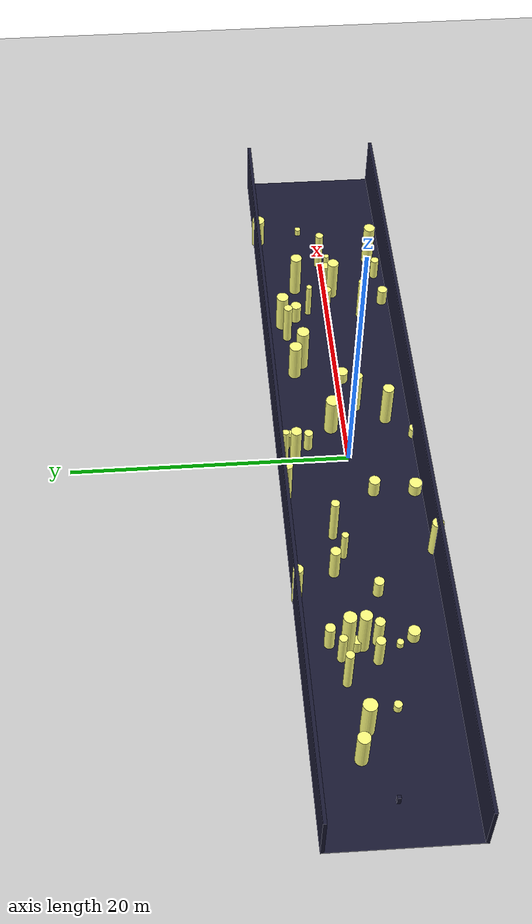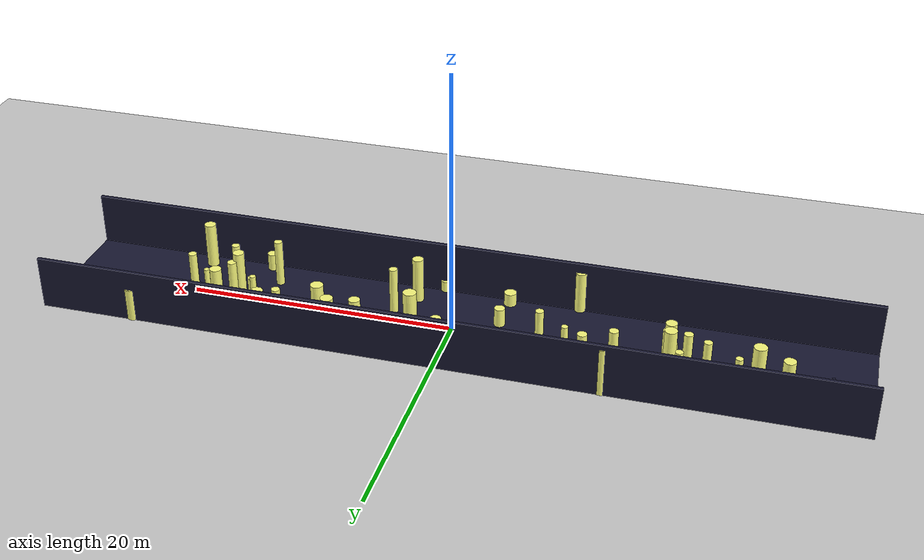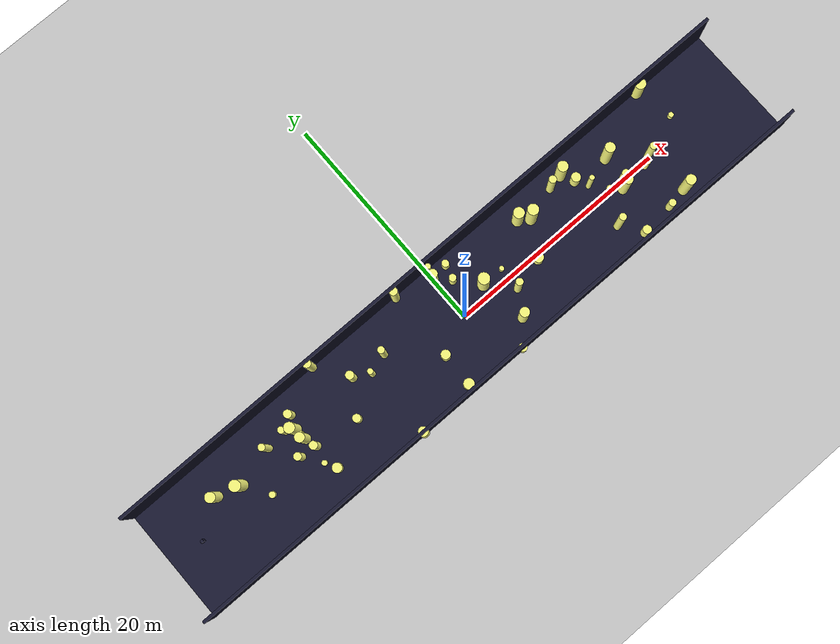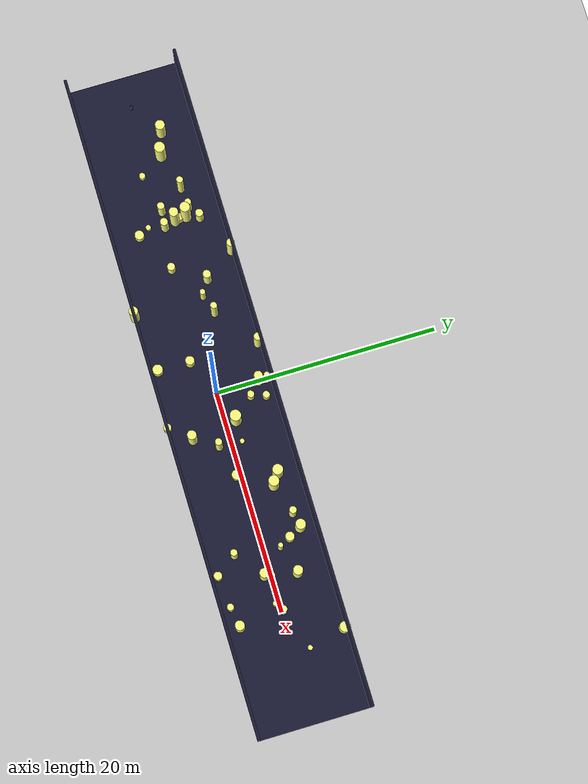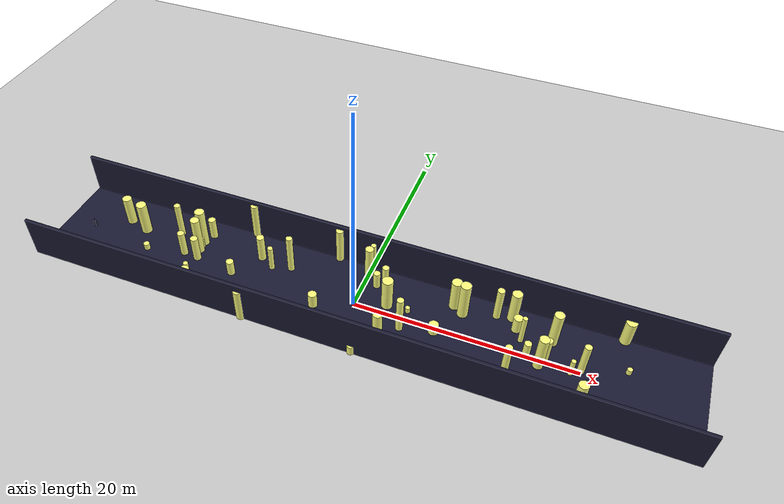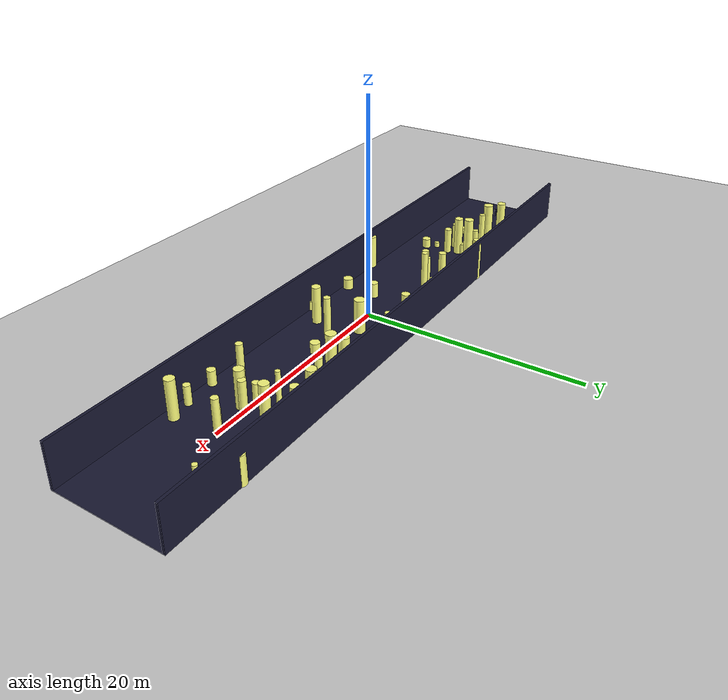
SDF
<?xml version="1.0"?>
<sdf version="1.4">
  <world name="default">
    <gui>
      <camera name="user_camera">
        <pose>-20 -30 40 0 0.66 0.83</pose>
      </camera>
    </gui>
    <include>
      <uri>model://ground_plane</uri>
    </include>
    <include>
      <uri>model://sun</uri>
    </include>
    <scene>
      <shadows>0</shadows>
    </scene>
    <model name="forest">
      <static>true</static>
      <link name="cylinder0">
        <pose>8.349437409540286 3.1106547862713683 1.555007984084378 0 0 0 </pose>
        <visual name="visual">
          <geometry>
            <cylinder>
              <radius>0.46604153400561305</radius>
              <length>3.110015968168756</length>
            </cylinder>
          </geometry>
          <material>
            <ambient>0.6 0.6 0.6 1</ambient>
            <diffuse>1 1 0.5 1</diffuse>
            <specular>0 0 0</specular>
            <emissive>0 0 0 1</emissive>
          </material>
        </visual>
        <collision name="collision">
          <geometry>
            <cylinder>
              <radius>0.46604153400561305</radius>
              <length>3.110015968168756</length>
            </cylinder>
          </geometry>
          <max_contacts>0</max_contacts>
        </collision>
      </link>
      <link name="cylinder1">
        <pose>-15.570167329381862 3.041496985362123 1.0694810582377205 0 0 0 </pose>
        <visual name="visual">
          <geometry>
            <cylinder>
              <radius>0.34902833103054975</radius>
              <length>2.138962116475441</length>
            </cylinder>
          </geometry>
          <material>
            <ambient>0.6 0.6 0.6 1</ambient>
            <diffuse>1 1 0.5 1</diffuse>
            <specular>0 0 0</specular>
            <emissive>0 0 0 1</emissive>
          </material>
        </visual>
        <collision name="collision">
          <geometry>
            <cylinder>
              <radius>0.34902833103054975</radius>
              <length>2.138962116475441</length>
            </cylinder>
          </geometry>
          <max_contacts>0</max_contacts>
        </collision>
      </link>
      <link name="cylinder2">
        <pose>9.264932227861962 2.496867217839773 1.8448728793690832 0 0 0 </pose>
        <visual name="visual">
          <geometry>
            <cylinder>
              <radius>0.47070173158434025</radius>
              <length>3.6897457587381663</length>
            </cylinder>
          </geometry>
          <material>
            <ambient>0.6 0.6 0.6 1</ambient>
            <diffuse>1 1 0.5 1</diffuse>
            <specular>0 0 0</specular>
            <emissive>0 0 0 1</emissive>
          </material>
        </visual>
        <collision name="collision">
          <geometry>
            <cylinder>
              <radius>0.47070173158434025</radius>
              <length>3.6897457587381663</length>
            </cylinder>
          </geometry>
          <max_contacts>0</max_contacts>
        </collision>
      </link>
      <link name="cylinder3">
        <pose>-21.992177312085424 1.3141356156942452 1.6444746010618094 0 0 0 </pose>
        <visual name="visual">
          <geometry>
            <cylinder>
              <radius>0.4821329074714389</radius>
              <length>3.288949202123619</length>
            </cylinder>
          </geometry>
          <material>
            <ambient>0.6 0.6 0.6 1</ambient>
            <diffuse>1 1 0.5 1</diffuse>
            <specular>0 0 0</specular>
            <emissive>0 0 0 1</emissive>
          </material>
        </visual>
        <collision name="collision">
          <geometry>
            <cylinder>
              <radius>0.4821329074714389</radius>
              <length>3.288949202123619</length>
            </cylinder>
          </geometry>
          <max_contacts>0</max_contacts>
        </collision>
      </link>
      <link name="cylinder4">
        <pose>14.651545621738713 1.4918867180024886 1.4606335159107362 0 0 0 </pose>
        <visual name="visual">
          <geometry>
            <cylinder>
              <radius>0.21861178909118653</radius>
              <length>2.9212670318214724</length>
            </cylinder>
          </geometry>
          <material>
            <ambient>0.6 0.6 0.6 1</ambient>
            <diffuse>1 1 0.5 1</diffuse>
            <specular>0 0 0</specular>
            <emissive>0 0 0 1</emissive>
          </material>
        </visual>
        <collision name="collision">
          <geometry>
            <cylinder>
              <radius>0.21861178909118653</radius>
              <length>2.9212670318214724</length>
            </cylinder>
          </geometry>
          <max_contacts>0</max_contacts>
        </collision>
      </link>
      <link name="cylinder5">
        <pose>-15.991085803616329 1.9047836756651115 1.9655408614929368 0 0 0 </pose>
        <visual name="visual">
          <geometry>
            <cylinder>
              <radius>0.45219268745514124</radius>
              <length>3.9310817229858737</length>
            </cylinder>
          </geometry>
          <material>
            <ambient>0.6 0.6 0.6 1</ambient>
            <diffuse>1 1 0.5 1</diffuse>
            <specular>0 0 0</specular>
            <emissive>0 0 0 1</emissive>
          </material>
        </visual>
        <collision name="collision">
          <geometry>
            <cylinder>
              <radius>0.45219268745514124</radius>
              <length>3.9310817229858737</length>
            </cylinder>
          </geometry>
          <max_contacts>0</max_contacts>
        </collision>
      </link>
      <link name="cylinder6">
        <pose>-11.7462965225265 -0.6720459783363228 0.7546222634386621 0 0 0 </pose>
        <visual name="visual">
          <geometry>
            <cylinder>
              <radius>0.3491255711578798</radius>
              <length>1.5092445268773242</length>
            </cylinder>
          </geometry>
          <material>
            <ambient>0.6 0.6 0.6 1</ambient>
            <diffuse>1 1 0.5 1</diffuse>
            <specular>0 0 0</specular>
            <emissive>0 0 0 1</emissive>
          </material>
        </visual>
        <collision name="collision">
          <geometry>
            <cylinder>
              <radius>0.3491255711578798</radius>
              <length>1.5092445268773242</length>
            </cylinder>
          </geometry>
          <max_contacts>0</max_contacts>
        </collision>
      </link>
      <link name="cylinder7">
        <pose>-11.869393596611838 4.842907155835162 1.8189494220650586 0 0 0 </pose>
        <visual name="visual">
          <geometry>
            <cylinder>
              <radius>0.3513841569319158</radius>
              <length>3.637898844130117</length>
            </cylinder>
          </geometry>
          <material>
            <ambient>0.6 0.6 0.6 1</ambient>
            <diffuse>1 1 0.5 1</diffuse>
            <specular>0 0 0</specular>
            <emissive>0 0 0 1</emissive>
          </material>
        </visual>
        <collision name="collision">
          <geometry>
            <cylinder>
              <radius>0.3513841569319158</radius>
              <length>3.637898844130117</length>
            </cylinder>
          </geometry>
          <max_contacts>0</max_contacts>
        </collision>
      </link>
      <link name="cylinder8">
        <pose>1.1695130825084625 2.806781191300659 0.8475760003758344 0 0 0 </pose>
        <visual name="visual">
          <geometry>
            <cylinder>
              <radius>0.3112546237325019</radius>
              <length>1.6951520007516687</length>
            </cylinder>
          </geometry>
          <material>
            <ambient>0.6 0.6 0.6 1</ambient>
            <diffuse>1 1 0.5 1</diffuse>
            <specular>0 0 0</specular>
            <emissive>0 0 0 1</emissive>
          </material>
        </visual>
        <collision name="collision">
          <geometry>
            <cylinder>
              <radius>0.3112546237325019</radius>
              <length>1.6951520007516687</length>
            </cylinder>
          </geometry>
          <max_contacts>0</max_contacts>
        </collision>
      </link>
      <link name="cylinder9">
        <pose>20.26291828484451 -3.8047133821711276 1.7745727353670695 0 0 0 </pose>
        <visual name="visual">
          <geometry>
            <cylinder>
              <radius>0.42996926369159594</radius>
              <length>3.549145470734139</length>
            </cylinder>
          </geometry>
          <material>
            <ambient>0.6 0.6 0.6 1</ambient>
            <diffuse>1 1 0.5 1</diffuse>
            <specular>0 0 0</specular>
            <emissive>0 0 0 1</emissive>
          </material>
        </visual>
        <collision name="collision">
          <geometry>
            <cylinder>
              <radius>0.42996926369159594</radius>
              <length>3.549145470734139</length>
            </cylinder>
          </geometry>
          <max_contacts>0</max_contacts>
        </collision>
      </link>
      <link name="cylinder10">
        <pose>1.8220448835498715 -4.982261084624194 0.45637201559100626 0 0 0 </pose>
        <visual name="visual">
          <geometry>
            <cylinder>
              <radius>0.3495129834022448</radius>
              <length>0.9127440311820125</length>
            </cylinder>
          </geometry>
          <material>
            <ambient>0.6 0.6 0.6 1</ambient>
            <diffuse>1 1 0.5 1</diffuse>
            <specular>0 0 0</specular>
            <emissive>0 0 0 1</emissive>
          </material>
        </visual>
        <collision name="collision">
          <geometry>
            <cylinder>
              <radius>0.3495129834022448</radius>
              <length>0.9127440311820125</length>
            </cylinder>
          </geometry>
          <max_contacts>0</max_contacts>
        </collision>
      </link>
      <link name="cylinder11">
        <pose>-20.611856955800555 -0.8191665142583453 0.3426207128806176 0 0 0 </pose>
        <visual name="visual">
          <geometry>
            <cylinder>
              <radius>0.2786215115761463</radius>
              <length>0.6852414257612351</length>
            </cylinder>
          </geometry>
          <material>
            <ambient>0.6 0.6 0.6 1</ambient>
            <diffuse>1 1 0.5 1</diffuse>
            <specular>0 0 0</specular>
            <emissive>0 0 0 1</emissive>
          </material>
        </visual>
        <collision name="collision">
          <geometry>
            <cylinder>
              <radius>0.2786215115761463</radius>
              <length>0.6852414257612351</length>
            </cylinder>
          </geometry>
          <max_contacts>0</max_contacts>
        </collision>
      </link>
      <link name="cylinder12">
        <pose>13.439312955107475 3.644628079908511 1.5985352423241443 0 0 0 </pose>
        <visual name="visual">
          <geometry>
            <cylinder>
              <radius>0.4532152867538911</radius>
              <length>3.1970704846482887</length>
            </cylinder>
          </geometry>
          <material>
            <ambient>0.6 0.6 0.6 1</ambient>
            <diffuse>1 1 0.5 1</diffuse>
            <specular>0 0 0</specular>
            <emissive>0 0 0 1</emissive>
          </material>
        </visual>
        <collision name="collision">
          <geometry>
            <cylinder>
              <radius>0.4532152867538911</radius>
              <length>3.1970704846482887</length>
            </cylinder>
          </geometry>
          <max_contacts>0</max_contacts>
        </collision>
      </link>
      <link name="cylinder13">
        <pose>12.09870642139964 3.354956183260688 1.6802269591782362 0 0 0 </pose>
        <visual name="visual">
          <geometry>
            <cylinder>
              <radius>0.31940487259325145</radius>
              <length>3.3604539183564723</length>
            </cylinder>
          </geometry>
          <material>
            <ambient>0.6 0.6 0.6 1</ambient>
            <diffuse>1 1 0.5 1</diffuse>
            <specular>0 0 0</specular>
            <emissive>0 0 0 1</emissive>
          </material>
        </visual>
        <collision name="collision">
          <geometry>
            <cylinder>
              <radius>0.31940487259325145</radius>
              <length>3.3604539183564723</length>
            </cylinder>
          </geometry>
          <max_contacts>0</max_contacts>
        </collision>
      </link>
      <link name="cylinder14">
        <pose>4.764955165261036 0.9481134770637816 0.30004550714168365 0 0 0 </pose>
        <visual name="visual">
          <geometry>
            <cylinder>
              <radius>0.20827489546812583</radius>
              <length>0.6000910142833673</length>
            </cylinder>
          </geometry>
          <material>
            <ambient>0.6 0.6 0.6 1</ambient>
            <diffuse>1 1 0.5 1</diffuse>
            <specular>0 0 0</specular>
            <emissive>0 0 0 1</emissive>
          </material>
        </visual>
        <collision name="collision">
          <geometry>
            <cylinder>
              <radius>0.20827489546812583</radius>
              <length>0.6000910142833673</length>
            </cylinder>
          </geometry>
          <max_contacts>0</max_contacts>
        </collision>
      </link>
      <link name="cylinder15">
        <pose>-15.872173961532265 0.8470509252483192 1.9209107966800187 0 0 0 </pose>
        <visual name="visual">
          <geometry>
            <cylinder>
              <radius>0.4123557994740781</radius>
              <length>3.8418215933600375</length>
            </cylinder>
          </geometry>
          <material>
            <ambient>0.6 0.6 0.6 1</ambient>
            <diffuse>1 1 0.5 1</diffuse>
            <specular>0 0 0</specular>
            <emissive>0 0 0 1</emissive>
          </material>
        </visual>
        <collision name="collision">
          <geometry>
            <cylinder>
              <radius>0.4123557994740781</radius>
              <length>3.8418215933600375</length>
            </cylinder>
          </geometry>
          <max_contacts>0</max_contacts>
        </collision>
      </link>
      <link name="cylinder16">
        <pose>22.853973891798127 4.7733954529959775 1.2481413521348617 0 0 0 </pose>
        <visual name="visual">
          <geometry>
            <cylinder>
              <radius>0.4763498110625022</radius>
              <length>2.4962827042697233</length>
            </cylinder>
          </geometry>
          <material>
            <ambient>0.6 0.6 0.6 1</ambient>
            <diffuse>1 1 0.5 1</diffuse>
            <specular>0 0 0</specular>
            <emissive>0 0 0 1</emissive>
          </material>
        </visual>
        <collision name="collision">
          <geometry>
            <cylinder>
              <radius>0.4763498110625022</radius>
              <length>2.4962827042697233</length>
            </cylinder>
          </geometry>
          <max_contacts>0</max_contacts>
        </collision>
      </link>
      <link name="cylinder17">
        <pose>-18.559095779532818 2.17785379977178 1.8047643304296823 0 0 0 </pose>
        <visual name="visual">
          <geometry>
            <cylinder>
              <radius>0.2943518879257469</radius>
              <length>3.6095286608593646</length>
            </cylinder>
          </geometry>
          <material>
            <ambient>0.6 0.6 0.6 1</ambient>
            <diffuse>1 1 0.5 1</diffuse>
            <specular>0 0 0</specular>
            <emissive>0 0 0 1</emissive>
          </material>
        </visual>
        <collision name="collision">
          <geometry>
            <cylinder>
              <radius>0.2943518879257469</radius>
              <length>3.6095286608593646</length>
            </cylinder>
          </geometry>
          <max_contacts>0</max_contacts>
        </collision>
      </link>
      <link name="cylinder18">
        <pose>-6.869174107204252 1.8607139635187568 1.9449289237038379 0 0 0 </pose>
        <visual name="visual">
          <geometry>
            <cylinder>
              <radius>0.2957205758142082</radius>
              <length>3.8898578474076757</length>
            </cylinder>
          </geometry>
          <material>
            <ambient>0.6 0.6 0.6 1</ambient>
            <diffuse>1 1 0.5 1</diffuse>
            <specular>0 0 0</specular>
            <emissive>0 0 0 1</emissive>
          </material>
        </visual>
        <collision name="collision">
          <geometry>
            <cylinder>
              <radius>0.2957205758142082</radius>
              <length>3.8898578474076757</length>
            </cylinder>
          </geometry>
          <max_contacts>0</max_contacts>
        </collision>
      </link>
      <link name="cylinder19">
        <pose>0.15447557267542678 4.571454729429741 1.573197028558659 0 0 0 </pose>
        <visual name="visual">
          <geometry>
            <cylinder>
              <radius>0.24341352889869744</radius>
              <length>3.146394057117318</length>
            </cylinder>
          </geometry>
          <material>
            <ambient>0.6 0.6 0.6 1</ambient>
            <diffuse>1 1 0.5 1</diffuse>
            <specular>0 0 0</specular>
            <emissive>0 0 0 1</emissive>
          </material>
        </visual>
        <collision name="collision">
          <geometry>
            <cylinder>
              <radius>0.24341352889869744</radius>
              <length>3.146394057117318</length>
            </cylinder>
          </geometry>
          <max_contacts>0</max_contacts>
        </collision>
      </link>
      <link name="cylinder20">
        <pose>16.58919699323205 -0.5395275621296856 1.7302322056494528 0 0 0 </pose>
        <visual name="visual">
          <geometry>
            <cylinder>
              <radius>0.42069568683489916</radius>
              <length>3.4604644112989056</length>
            </cylinder>
          </geometry>
          <material>
            <ambient>0.6 0.6 0.6 1</ambient>
            <diffuse>1 1 0.5 1</diffuse>
            <specular>0 0 0</specular>
            <emissive>0 0 0 1</emissive>
          </material>
        </visual>
        <collision name="collision">
          <geometry>
            <cylinder>
              <radius>0.42069568683489916</radius>
              <length>3.4604644112989056</length>
            </cylinder>
          </geometry>
          <max_contacts>0</max_contacts>
        </collision>
      </link>
      <link name="cylinder21">
        <pose>14.191234545611096 -2.5365694871366173 1.8310154841350252 0 0 0 </pose>
        <visual name="visual">
          <geometry>
            <cylinder>
              <radius>0.30427498027199185</radius>
              <length>3.6620309682700505</length>
            </cylinder>
          </geometry>
          <material>
            <ambient>0.6 0.6 0.6 1</ambient>
            <diffuse>1 1 0.5 1</diffuse>
            <specular>0 0 0</specular>
            <emissive>0 0 0 1</emissive>
          </material>
        </visual>
        <collision name="collision">
          <geometry>
            <cylinder>
              <radius>0.30427498027199185</radius>
              <length>3.6620309682700505</length>
            </cylinder>
          </geometry>
          <max_contacts>0</max_contacts>
        </collision>
      </link>
      <link name="cylinder22">
        <pose>-8.485195557832697 -4.9552423317766205 1.6306597807279162 0 0 0 </pose>
        <visual name="visual">
          <geometry>
            <cylinder>
              <radius>0.4063245504705002</radius>
              <length>3.2613195614558323</length>
            </cylinder>
          </geometry>
          <material>
            <ambient>0.6 0.6 0.6 1</ambient>
            <diffuse>1 1 0.5 1</diffuse>
            <specular>0 0 0</specular>
            <emissive>0 0 0 1</emissive>
          </material>
        </visual>
        <collision name="collision">
          <geometry>
            <cylinder>
              <radius>0.4063245504705002</radius>
              <length>3.2613195614558323</length>
            </cylinder>
          </geometry>
          <max_contacts>0</max_contacts>
        </collision>
      </link>
      <link name="cylinder23">
        <pose>-15.952123850026311 -1.6006213570006778 0.28181734186485974 0 0 0 </pose>
        <visual name="visual">
          <geometry>
            <cylinder>
              <radius>0.23493384302550618</radius>
              <length>0.5636346837297195</length>
            </cylinder>
          </geometry>
          <material>
            <ambient>0.6 0.6 0.6 1</ambient>
            <diffuse>1 1 0.5 1</diffuse>
            <specular>0 0 0</specular>
            <emissive>0 0 0 1</emissive>
          </material>
        </visual>
        <collision name="collision">
          <geometry>
            <cylinder>
              <radius>0.23493384302550618</radius>
              <length>0.5636346837297195</length>
            </cylinder>
          </geometry>
          <max_contacts>0</max_contacts>
        </collision>
      </link>
      <link name="cylinder24">
        <pose>-24.028455053035664 1.9157098659674423 1.456413703293613 0 0 0 </pose>
        <visual name="visual">
          <geometry>
            <cylinder>
              <radius>0.4372695673624202</radius>
              <length>2.912827406587226</length>
            </cylinder>
          </geometry>
          <material>
            <ambient>0.6 0.6 0.6 1</ambient>
            <diffuse>1 1 0.5 1</diffuse>
            <specular>0 0 0</specular>
            <emissive>0 0 0 1</emissive>
          </material>
        </visual>
        <collision name="collision">
          <geometry>
            <cylinder>
              <radius>0.4372695673624202</radius>
              <length>2.912827406587226</length>
            </cylinder>
          </geometry>
          <max_contacts>0</max_contacts>
        </collision>
      </link>
      <link name="cylinder25">
        <pose>-17.02681512029133 -0.03739169442788537 1.2916779133804628 0 0 0 </pose>
        <visual name="visual">
          <geometry>
            <cylinder>
              <radius>0.3293401897134526</radius>
              <length>2.5833558267609256</length>
            </cylinder>
          </geometry>
          <material>
            <ambient>0.6 0.6 0.6 1</ambient>
            <diffuse>1 1 0.5 1</diffuse>
            <specular>0 0 0</specular>
            <emissive>0 0 0 1</emissive>
          </material>
        </visual>
        <collision name="collision">
          <geometry>
            <cylinder>
              <radius>0.3293401897134526</radius>
              <length>2.5833558267609256</length>
            </cylinder>
          </geometry>
          <max_contacts>0</max_contacts>
        </collision>
      </link>
      <link name="cylinder26">
        <pose>-15.573569832952039 -0.17029534973464067 1.2751121612905196 0 0 0 </pose>
        <visual name="visual">
          <geometry>
            <cylinder>
              <radius>0.3477700735366163</radius>
              <length>2.5502243225810393</length>
            </cylinder>
          </geometry>
          <material>
            <ambient>0.6 0.6 0.6 1</ambient>
            <diffuse>1 1 0.5 1</diffuse>
            <specular>0 0 0</specular>
            <emissive>0 0 0 1</emissive>
          </material>
        </visual>
        <collision name="collision">
          <geometry>
            <cylinder>
              <radius>0.3477700735366163</radius>
              <length>2.5502243225810393</length>
            </cylinder>
          </geometry>
          <max_contacts>0</max_contacts>
        </collision>
      </link>
      <link name="cylinder27">
        <pose>-8.572649265125655 1.307825869704116 1.2763813228366736 0 0 0 </pose>
        <visual name="visual">
          <geometry>
            <cylinder>
              <radius>0.24593968756133594</radius>
              <length>2.552762645673347</length>
            </cylinder>
          </geometry>
          <material>
            <ambient>0.6 0.6 0.6 1</ambient>
            <diffuse>1 1 0.5 1</diffuse>
            <specular>0 0 0</specular>
            <emissive>0 0 0 1</emissive>
          </material>
        </visual>
        <collision name="collision">
          <geometry>
            <cylinder>
              <radius>0.24593968756133594</radius>
              <length>2.552762645673347</length>
            </cylinder>
          </geometry>
          <max_contacts>0</max_contacts>
        </collision>
      </link>
      <link name="cylinder28">
        <pose>7.528380078380529 -0.35807804412498623 0.5070488653315851 0 0 0 </pose>
        <visual name="visual">
          <geometry>
            <cylinder>
              <radius>0.4383069309214866</radius>
              <length>1.0140977306631702</length>
            </cylinder>
          </geometry>
          <material>
            <ambient>0.6 0.6 0.6 1</ambient>
            <diffuse>1 1 0.5 1</diffuse>
            <specular>0 0 0</specular>
            <emissive>0 0 0 1</emissive>
          </material>
        </visual>
        <collision name="collision">
          <geometry>
            <cylinder>
              <radius>0.4383069309214866</radius>
              <length>1.0140977306631702</length>
            </cylinder>
          </geometry>
          <max_contacts>0</max_contacts>
        </collision>
      </link>
      <link name="cylinder29">
        <pose>15.42100166375829 -0.023911424827368855 0.893295614430205 0 0 0 </pose>
        <visual name="visual">
          <geometry>
            <cylinder>
              <radius>0.3142048540405393</radius>
              <length>1.78659122886041</length>
            </cylinder>
          </geometry>
          <material>
            <ambient>0.6 0.6 0.6 1</ambient>
            <diffuse>1 1 0.5 1</diffuse>
            <specular>0 0 0</specular>
            <emissive>0 0 0 1</emissive>
          </material>
        </visual>
        <collision name="collision">
          <geometry>
            <cylinder>
              <radius>0.3142048540405393</radius>
              <length>1.78659122886041</length>
            </cylinder>
          </geometry>
          <max_contacts>0</max_contacts>
        </collision>
      </link>
      <link name="cylinder30">
        <pose>14.03691446711813 2.521012904413112 0.7962944860729267 0 0 0 </pose>
        <visual name="visual">
          <geometry>
            <cylinder>
              <radius>0.40230784846924295</radius>
              <length>1.5925889721458535</length>
            </cylinder>
          </geometry>
          <material>
            <ambient>0.6 0.6 0.6 1</ambient>
            <diffuse>1 1 0.5 1</diffuse>
            <specular>0 0 0</specular>
            <emissive>0 0 0 1</emissive>
          </material>
        </visual>
        <collision name="collision">
          <geometry>
            <cylinder>
              <radius>0.40230784846924295</radius>
              <length>1.5925889721458535</length>
            </cylinder>
          </geometry>
          <max_contacts>0</max_contacts>
        </collision>
      </link>
      <link name="cylinder31">
        <pose>1.5342258124241965 4.116376456503399 0.6318103495157956 0 0 0 </pose>
        <visual name="visual">
          <geometry>
            <cylinder>
              <radius>0.31293206029651865</radius>
              <length>1.2636206990315912</length>
            </cylinder>
          </geometry>
          <material>
            <ambient>0.6 0.6 0.6 1</ambient>
            <diffuse>1 1 0.5 1</diffuse>
            <specular>0 0 0</specular>
            <emissive>0 0 0 1</emissive>
          </material>
        </visual>
        <collision name="collision">
          <geometry>
            <cylinder>
              <radius>0.31293206029651865</radius>
              <length>1.2636206990315912</length>
            </cylinder>
          </geometry>
          <max_contacts>0</max_contacts>
        </collision>
      </link>
      <link name="cylinder32">
        <pose>-15.982060405930575 1.2931157938347395 0.5580905871393089 0 0 0 </pose>
        <visual name="visual">
          <geometry>
            <cylinder>
              <radius>0.348454229964579</radius>
              <length>1.1161811742786178</length>
            </cylinder>
          </geometry>
          <material>
            <ambient>0.6 0.6 0.6 1</ambient>
            <diffuse>1 1 0.5 1</diffuse>
            <specular>0 0 0</specular>
            <emissive>0 0 0 1</emissive>
          </material>
        </visual>
        <collision name="collision">
          <geometry>
            <cylinder>
              <radius>0.348454229964579</radius>
              <length>1.1161811742786178</length>
            </cylinder>
          </geometry>
          <max_contacts>0</max_contacts>
        </collision>
      </link>
      <link name="cylinder33">
        <pose>15.526783813350491 -4.398966213291013 0.7000244280856294 0 0 0 </pose>
        <visual name="visual">
          <geometry>
            <cylinder>
              <radius>0.3709775622442676</radius>
              <length>1.4000488561712587</length>
            </cylinder>
          </geometry>
          <material>
            <ambient>0.6 0.6 0.6 1</ambient>
            <diffuse>1 1 0.5 1</diffuse>
            <specular>0 0 0</specular>
            <emissive>0 0 0 1</emissive>
          </material>
        </visual>
        <collision name="collision">
          <geometry>
            <cylinder>
              <radius>0.3709775622442676</radius>
              <length>1.4000488561712587</length>
            </cylinder>
          </geometry>
          <max_contacts>0</max_contacts>
        </collision>
      </link>
      <link name="cylinder34">
        <pose>16.92736108362321 -0.015634087118176154 1.4419733843261733 0 0 0 </pose>
        <visual name="visual">
          <geometry>
            <cylinder>
              <radius>0.33669778275358514</radius>
              <length>2.8839467686523466</length>
            </cylinder>
          </geometry>
          <material>
            <ambient>0.6 0.6 0.6 1</ambient>
            <diffuse>1 1 0.5 1</diffuse>
            <specular>0 0 0</specular>
            <emissive>0 0 0 1</emissive>
          </material>
        </visual>
        <collision name="collision">
          <geometry>
            <cylinder>
              <radius>0.33669778275358514</radius>
              <length>2.8839467686523466</length>
            </cylinder>
          </geometry>
          <max_contacts>0</max_contacts>
        </collision>
      </link>
      <link name="cylinder35">
        <pose>-15.419526353828006 -2.567510669865541 0.48958967961345384 0 0 0 </pose>
        <visual name="visual">
          <geometry>
            <cylinder>
              <radius>0.4157992599087881</radius>
              <length>0.9791793592269077</length>
            </cylinder>
          </geometry>
          <material>
            <ambient>0.6 0.6 0.6 1</ambient>
            <diffuse>1 1 0.5 1</diffuse>
            <specular>0 0 0</specular>
            <emissive>0 0 0 1</emissive>
          </material>
        </visual>
        <collision name="collision">
          <geometry>
            <cylinder>
              <radius>0.4157992599087881</radius>
              <length>0.9791793592269077</length>
            </cylinder>
          </geometry>
          <max_contacts>0</max_contacts>
        </collision>
      </link>
      <link name="cylinder36">
        <pose>19.211590592282562 -0.3561901072548803 0.8577439265293034 0 0 0 </pose>
        <visual name="visual">
          <geometry>
            <cylinder>
              <radius>0.20215640643700372</radius>
              <length>1.7154878530586068</length>
            </cylinder>
          </geometry>
          <material>
            <ambient>0.6 0.6 0.6 1</ambient>
            <diffuse>1 1 0.5 1</diffuse>
            <specular>0 0 0</specular>
            <emissive>0 0 0 1</emissive>
          </material>
        </visual>
        <collision name="collision">
          <geometry>
            <cylinder>
              <radius>0.20215640643700372</radius>
              <length>1.7154878530586068</length>
            </cylinder>
          </geometry>
          <max_contacts>0</max_contacts>
        </collision>
      </link>
      <link name="cylinder37">
        <pose>17.177130435421084 2.287579539263432 1.80430097086849 0 0 0 </pose>
        <visual name="visual">
          <geometry>
            <cylinder>
              <radius>0.42748528732271684</radius>
              <length>3.60860194173698</length>
            </cylinder>
          </geometry>
          <material>
            <ambient>0.6 0.6 0.6 1</ambient>
            <diffuse>1 1 0.5 1</diffuse>
            <specular>0 0 0</specular>
            <emissive>0 0 0 1</emissive>
          </material>
        </visual>
        <collision name="collision">
          <geometry>
            <cylinder>
              <radius>0.42748528732271684</radius>
              <length>3.60860194173698</length>
            </cylinder>
          </geometry>
          <max_contacts>0</max_contacts>
        </collision>
      </link>
      <link name="cylinder38">
        <pose>-3.3284662648135743 -4.366388434960033 0.5328228919141809 0 0 0 </pose>
        <visual name="visual">
          <geometry>
            <cylinder>
              <radius>0.4582383311806719</radius>
              <length>1.0656457838283617</length>
            </cylinder>
          </geometry>
          <material>
            <ambient>0.6 0.6 0.6 1</ambient>
            <diffuse>1 1 0.5 1</diffuse>
            <specular>0 0 0</specular>
            <emissive>0 0 0 1</emissive>
          </material>
        </visual>
        <collision name="collision">
          <geometry>
            <cylinder>
              <radius>0.4582383311806719</radius>
              <length>1.0656457838283617</length>
            </cylinder>
          </geometry>
          <max_contacts>0</max_contacts>
        </collision>
      </link>
      <link name="cylinder39">
        <pose>3.438638852780919 -3.1382744931669415 1.7725307091075633 0 0 0 </pose>
        <visual name="visual">
          <geometry>
            <cylinder>
              <radius>0.410006774614897</radius>
              <length>3.5450614182151265</length>
            </cylinder>
          </geometry>
          <material>
            <ambient>0.6 0.6 0.6 1</ambient>
            <diffuse>1 1 0.5 1</diffuse>
            <specular>0 0 0</specular>
            <emissive>0 0 0 1</emissive>
          </material>
        </visual>
        <collision name="collision">
          <geometry>
            <cylinder>
              <radius>0.410006774614897</radius>
              <length>3.5450614182151265</length>
            </cylinder>
          </geometry>
          <max_contacts>0</max_contacts>
        </collision>
      </link>
      <link name="cylinder40">
        <pose>23.640252284956 1.4713416441998923 0.30175649845489094 0 0 0 </pose>
        <visual name="visual">
          <geometry>
            <cylinder>
              <radius>0.22297490353905786</radius>
              <length>0.6035129969097819</length>
            </cylinder>
          </geometry>
          <material>
            <ambient>0.6 0.6 0.6 1</ambient>
            <diffuse>1 1 0.5 1</diffuse>
            <specular>0 0 0</specular>
            <emissive>0 0 0 1</emissive>
          </material>
        </visual>
        <collision name="collision">
          <geometry>
            <cylinder>
              <radius>0.22297490353905786</radius>
              <length>0.6035129969097819</length>
            </cylinder>
          </geometry>
          <max_contacts>0</max_contacts>
        </collision>
      </link>
      <link name="cylinder41">
        <pose>0.04216934624335522 3.839370768926498 1.6634323034116012 0 0 0 </pose>
        <visual name="visual">
          <geometry>
            <cylinder>
              <radius>0.3866503707806945</radius>
              <length>3.3268646068232024</length>
            </cylinder>
          </geometry>
          <material>
            <ambient>0.6 0.6 0.6 1</ambient>
            <diffuse>1 1 0.5 1</diffuse>
            <specular>0 0 0</specular>
            <emissive>0 0 0 1</emissive>
          </material>
        </visual>
        <collision name="collision">
          <geometry>
            <cylinder>
              <radius>0.3866503707806945</radius>
              <length>3.3268646068232024</length>
            </cylinder>
          </geometry>
          <max_contacts>0</max_contacts>
        </collision>
      </link>
      <link name="cylinder42">
        <pose>-3.2012935317279236 4.746754417676813 1.803479858753263 0 0 0 </pose>
        <visual name="visual">
          <geometry>
            <cylinder>
              <radius>0.3441710375374675</radius>
              <length>3.606959717506526</length>
            </cylinder>
          </geometry>
          <material>
            <ambient>0.6 0.6 0.6 1</ambient>
            <diffuse>1 1 0.5 1</diffuse>
            <specular>0 0 0</specular>
            <emissive>0 0 0 1</emissive>
          </material>
        </visual>
        <collision name="collision">
          <geometry>
            <cylinder>
              <radius>0.3441710375374675</radius>
              <length>3.606959717506526</length>
            </cylinder>
          </geometry>
          <max_contacts>0</max_contacts>
        </collision>
      </link>
      <link name="cylinder43">
        <pose>-3.228324355686375 -1.439717430561159 0.7322415109231069 0 0 0 </pose>
        <visual name="visual">
          <geometry>
            <cylinder>
              <radius>0.4006826377820253</radius>
              <length>1.4644830218462137</length>
            </cylinder>
          </geometry>
          <material>
            <ambient>0.6 0.6 0.6 1</ambient>
            <diffuse>1 1 0.5 1</diffuse>
            <specular>0 0 0</specular>
            <emissive>0 0 0 1</emissive>
          </material>
        </visual>
        <collision name="collision">
          <geometry>
            <cylinder>
              <radius>0.4006826377820253</radius>
              <length>1.4644830218462137</length>
            </cylinder>
          </geometry>
          <max_contacts>0</max_contacts>
        </collision>
      </link>
      <link name="cylinder44">
        <pose>4.688097695601616 -1.0989432033547475 1.8274560145017893 0 0 0 </pose>
        <visual name="visual">
          <geometry>
            <cylinder>
              <radius>0.3097522037980481</radius>
              <length>3.6549120290035786</length>
            </cylinder>
          </geometry>
          <material>
            <ambient>0.6 0.6 0.6 1</ambient>
            <diffuse>1 1 0.5 1</diffuse>
            <specular>0 0 0</specular>
            <emissive>0 0 0 1</emissive>
          </material>
        </visual>
        <collision name="collision">
          <geometry>
            <cylinder>
              <radius>0.3097522037980481</radius>
              <length>3.6549120290035786</length>
            </cylinder>
          </geometry>
          <max_contacts>0</max_contacts>
        </collision>
      </link>
      <link name="cylinder45">
        <pose>2.8236069348818162 0.9561513433968774 1.6057083695565448 0 0 0 </pose>
        <visual name="visual">
          <geometry>
            <cylinder>
              <radius>0.4966574695453979</radius>
              <length>3.2114167391130897</length>
            </cylinder>
          </geometry>
          <material>
            <ambient>0.6 0.6 0.6 1</ambient>
            <diffuse>1 1 0.5 1</diffuse>
            <specular>0 0 0</specular>
            <emissive>0 0 0 1</emissive>
          </material>
        </visual>
        <collision name="collision">
          <geometry>
            <cylinder>
              <radius>0.4966574695453979</radius>
              <length>3.2114167391130897</length>
            </cylinder>
          </geometry>
          <max_contacts>0</max_contacts>
        </collision>
      </link>
      <link name="cylinder46">
        <pose>-16.704520729804784 2.349473360736286 1.2996024224346705 0 0 0 </pose>
        <visual name="visual">
          <geometry>
            <cylinder>
              <radius>0.28558136938989165</radius>
              <length>2.599204844869341</length>
            </cylinder>
          </geometry>
          <material>
            <ambient>0.6 0.6 0.6 1</ambient>
            <diffuse>1 1 0.5 1</diffuse>
            <specular>0 0 0</specular>
            <emissive>0 0 0 1</emissive>
          </material>
        </visual>
        <collision name="collision">
          <geometry>
            <cylinder>
              <radius>0.28558136938989165</radius>
              <length>2.599204844869341</length>
            </cylinder>
          </geometry>
          <max_contacts>0</max_contacts>
        </collision>
      </link>
      <link name="cylinder47">
        <pose>-9.962971233311963 2.1115053149257808 1.34717096404061 0 0 0 </pose>
        <visual name="visual">
          <geometry>
            <cylinder>
              <radius>0.3594745228935684</radius>
              <length>2.69434192808122</length>
            </cylinder>
          </geometry>
          <material>
            <ambient>0.6 0.6 0.6 1</ambient>
            <diffuse>1 1 0.5 1</diffuse>
            <specular>0 0 0</specular>
            <emissive>0 0 0 1</emissive>
          </material>
        </visual>
        <collision name="collision">
          <geometry>
            <cylinder>
              <radius>0.3594745228935684</radius>
              <length>2.69434192808122</length>
            </cylinder>
          </geometry>
          <max_contacts>0</max_contacts>
        </collision>
      </link>
      <link name="cylinder48">
        <pose>19.95848539180814 0.18114731073100554 1.6244462216865927 0 0 0 </pose>
        <visual name="visual">
          <geometry>
            <cylinder>
              <radius>0.3052166340437445</radius>
              <length>3.2488924433731854</length>
            </cylinder>
          </geometry>
          <material>
            <ambient>0.6 0.6 0.6 1</ambient>
            <diffuse>1 1 0.5 1</diffuse>
            <specular>0 0 0</specular>
            <emissive>0 0 0 1</emissive>
          </material>
        </visual>
        <collision name="collision">
          <geometry>
            <cylinder>
              <radius>0.3052166340437445</radius>
              <length>3.2488924433731854</length>
            </cylinder>
          </geometry>
          <max_contacts>0</max_contacts>
        </collision>
      </link>
      <link name="cylinder49">
        <pose>18.429756677983924 -4.127219337077168 0.8996915774970533 0 0 0 </pose>
        <visual name="visual">
          <geometry>
            <cylinder>
              <radius>0.30632620252516823</radius>
              <length>1.7993831549941066</length>
            </cylinder>
          </geometry>
          <material>
            <ambient>0.6 0.6 0.6 1</ambient>
            <diffuse>1 1 0.5 1</diffuse>
            <specular>0 0 0</specular>
            <emissive>0 0 0 1</emissive>
          </material>
        </visual>
        <collision name="collision">
          <geometry>
            <cylinder>
              <radius>0.30632620252516823</radius>
              <length>1.7993831549941066</length>
            </cylinder>
          </geometry>
          <max_contacts>0</max_contacts>
        </collision>
      </link>
      <link name="cube0">
        <pose>0 5.0 2.0 0 0 0 </pose>
        <visual name="visual">
          <geometry>
            <box>
              <size>60.0 0.25 4.0</size>
            </box>
          </geometry>
          <material>
            <ambient>0.1 0.1 0.1 1</ambient>
            <diffuse>0.1 0.1 0.2 1</diffuse>
            <specular>0 0 0</specular>
            <emissive>0 0 0 1</emissive>
          </material>
        </visual>
        <collision name="collision">
          <geometry>
            <box>
              <size>60.0 0.25 4.0</size>
            </box>
          </geometry>
          <max_contacts>0</max_contacts>
        </collision>
      </link>
      <link name="cube1">
        <pose>0 -5.0 2.0 0 0 0 </pose>
        <visual name="visual">
          <geometry>
            <box>
              <size>60.0 0.25 4.0</size>
            </box>
          </geometry>
          <material>
            <ambient>0.1 0.1 0.1 1</ambient>
            <diffuse>0.1 0.1 0.2 1</diffuse>
            <specular>0 0 0</specular>
            <emissive>0 0 0 1</emissive>
          </material>
        </visual>
        <collision name="collision">
          <geometry>
            <box>
              <size>60.0 0.25 4.0</size>
            </box>
          </geometry>
          <max_contacts>0</max_contacts>
        </collision>
      </link>
      <link name="cube2">
        <pose>0 0 0.03125 0 0 0 </pose>
        <visual name="visual">
          <geometry>
            <box>
              <size>60.0 10 0.0625</size>
            </box>
          </geometry>
          <material>
            <ambient>0.1 0.1 0.1 1</ambient>
            <diffuse>0.1 0.1 0.2 1</diffuse>
            <specular>0 0 0</specular>
            <emissive>0 0 0 1</emissive>
          </material>
        </visual>
        <collision name="collision">
          <geometry>
            <box>
              <size>60.0 10 0.0625</size>
            </box>
          </geometry>
          <max_contacts>0</max_contacts>
        </collision>
      </link>
      <link name="cube3">
        <pose>-27.0 0.0 0.25 0 0 0 </pose>
        <visual name="visual">
          <geometry>
            <box>
              <size>0.25 0.25 1.0</size>
            </box>
          </geometry>
          <material>
            <ambient>0.1 0.1 0.1 1</ambient>
            <diffuse>0.1 0.1 0.2 1</diffuse>
            <specular>0 0 0</specular>
            <emissive>0 0 0 1</emissive>
          </material>
        </visual>
        <collision name="collision">
          <geometry>
            <box>
              <size>0.25 0.25 1.0</size>
            </box>
          </geometry>
          <max_contacts>0</max_contacts>
        </collision>
      </link>
    </model>
    <!-- Physics -->
    <physics name="default_physics" default="0" type="ode">
      <max_step_size>0.004</max_step_size>
      <real_time_factor>1</real_time_factor>
      <real_time_update_rate>250</real_time_update_rate>
      <gravity>0 0 -9.8</gravity>
      <magnetic_field>6e-06 2.3e-05 -4.2e-05</magnetic_field>
      <ode>
        <solver>
          <type>quick</type>
          <iters>1000</iters>
          <sor>1.3</sor>
          <use_dynamic_moi_rescaling>0</use_dynamic_moi_rescaling>
        </solver>
        <constraints>
          <cfm>0</cfm>
          <erp>0.2</erp>
          <contact_max_correcting_vel>100</contact_max_correcting_vel>
          <contact_surface_layer>0.001</contact_surface_layer>
        </constraints>
      </ode>
    </physics>
  </world>
</sdf>
